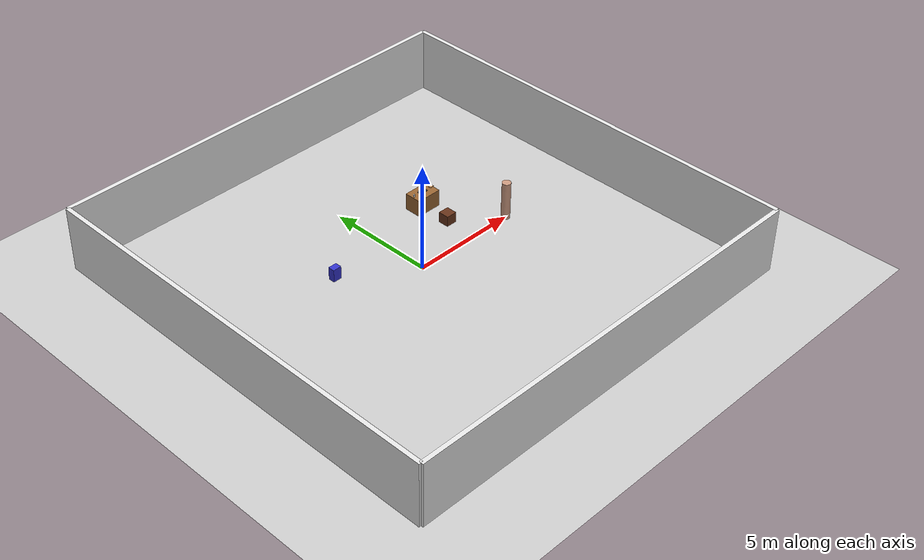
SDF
<?xml version="1.0" ?>
<sdf version="1.6">
  <world name="detection_world">
    <!-- 물리 엔진 설정 -->
    <physics type="ode">
      <max_step_size>0.001</max_step_size>
      <real_time_factor>1</real_time_factor>
      <real_time_update_rate>1000</real_time_update_rate>
      <gravity>0 0 -9.81</gravity>
    </physics>

    <!-- 조명 -->
    <light type="directional" name="sun">
      <cast_shadows>true</cast_shadows>
      <pose>0 0 10 0 0 0</pose>
      <diffuse>0.8 0.8 0.8 1</diffuse>
      <specular>0.2 0.2 0.2 1</specular>
      <attenuation>
        <range>1000</range>
        <constant>0.9</constant>
        <linear>0.01</linear>
        <quadratic>0.001</quadratic>
      </attenuation>
      <direction>-0.5 0.1 -0.9</direction>
    </light>

    <!-- 지면 -->
    <model name="ground_plane">
      <static>true</static>
      <link name="link">
        <collision name="collision">
          <geometry>
            <plane>
              <normal>0 0 1</normal>
              <size>50 50</size>
            </plane>
          </geometry>
        </collision>
        <visual name="visual">
          <geometry>
            <plane>
              <normal>0 0 1</normal>
              <size>50 50</size>
            </plane>
          </geometry>
          <material>
            <ambient>0.8 0.8 0.8 1</ambient>
            <diffuse>0.8 0.8 0.8 1</diffuse>
            <specular>0.2 0.2 0.2 1</specular>
          </material>
        </visual>
      </link>
    </model>

    <!-- 벽들 (실내 환경) -->
    <model name="wall_north">
      <static>true</static>
      <pose>0 10 1.5 0 0 0</pose>
      <link name="link">
        <collision name="collision">
          <geometry>
            <box>
              <size>20 0.2 3</size>
            </box>
          </geometry>
        </collision>
        <visual name="visual">
          <geometry>
            <box>
              <size>20 0.2 3</size>
            </box>
          </geometry>
          <material>
            <ambient>0.9 0.9 0.9 1</ambient>
            <diffuse>0.9 0.9 0.9 1</diffuse>
          </material>
        </visual>
      </link>
    </model>

    <model name="wall_south">
      <static>true</static>
      <pose>0 -10 1.5 0 0 0</pose>
      <link name="link">
        <collision name="collision">
          <geometry>
            <box>
              <size>20 0.2 3</size>
            </box>
          </geometry>
        </collision>
        <visual name="visual">
          <geometry>
            <box>
              <size>20 0.2 3</size>
            </box>
          </geometry>
          <material>
            <ambient>0.9 0.9 0.9 1</ambient>
            <diffuse>0.9 0.9 0.9 1</diffuse>
          </material>
        </visual>
      </link>
    </model>

    <model name="wall_east">
      <static>true</static>
      <pose>10 0 1.5 0 0 0</pose>
      <link name="link">
        <collision name="collision">
          <geometry>
            <box>
              <size>0.2 20 3</size>
            </box>
          </geometry>
        </collision>
        <visual name="visual">
          <geometry>
            <box>
              <size>0.2 20 3</size>
            </box>
          </geometry>
          <material>
            <ambient>0.9 0.9 0.9 1</ambient>
            <diffuse>0.9 0.9 0.9 1</diffuse>
          </material>
        </visual>
      </link>
    </model>

    <model name="wall_west">
      <static>true</static>
      <pose>-10 0 1.5 0 0 0</pose>
      <link name="link">
        <collision name="collision">
          <geometry>
            <box>
              <size>0.2 20 3</size>
            </box>
          </geometry>
        </collision>
        <visual name="visual">
          <geometry>
            <box>
              <size>0.2 20 3</size>
            </box>
          </geometry>
          <material>
            <ambient>0.9 0.9 0.9 1</ambient>
            <diffuse>0.9 0.9 0.9 1</diffuse>
          </material>
        </visual>
      </link>
    </model>

    <!-- 테이블 -->
    <model name="table1">
      <static>true</static>
      <pose>3 3 0.4 0 0 0</pose>
      <link name="link">
        <collision name="collision">
          <geometry>
            <box>
              <size>1.2 0.8 0.8</size>
            </box>
          </geometry>
        </collision>
        <visual name="visual">
          <geometry>
            <box>
              <size>1.2 0.8 0.8</size>
            </box>
          </geometry>
          <material>
            <ambient>0.6 0.4 0.2 1</ambient>
            <diffuse>0.6 0.4 0.2 1</diffuse>
          </material>
        </visual>
      </link>
    </model>

    <!-- 의자 -->
    <model name="chair1">
      <static>true</static>
      <pose>3 1.5 0.25 0 0 0</pose>
      <link name="link">
        <collision name="collision">
          <geometry>
            <box>
              <size>0.5 0.5 0.5</size>
            </box>
          </geometry>
        </collision>
        <visual name="visual">
          <geometry>
            <box>
              <size>0.5 0.5 0.5</size>
            </box>
          </geometry>
          <material>
            <ambient>0.4 0.2 0.1 1</ambient>
            <diffuse>0.4 0.2 0.1 1</diffuse>
          </material>
        </visual>
      </link>
    </model>

    <!-- 노트북 -->
    <model name="laptop1">
      <static>true</static>
      <pose>3 3 0.85 0 0 0</pose>
      <link name="link">
        <collision name="collision">
          <geometry>
            <box>
              <size>0.35 0.25 0.02</size>
            </box>
          </geometry>
        </collision>
        <visual name="visual">
          <geometry>
            <box>
              <size>0.35 0.25 0.02</size>
            </box>
          </geometry>
          <material>
            <ambient>0.2 0.2 0.2 1</ambient>
            <diffuse>0.2 0.2 0.2 1</diffuse>
          </material>
        </visual>
      </link>
    </model>

    <model name="cup1">
      <static>true</static>
      <pose>2.5 3 0.85 0 0 0</pose>
      <link name="link">
        <collision name="collision">
          <geometry>
            <cylinder>
              <radius>0.04</radius>
              <length>0.12</length>
            </cylinder>
          </geometry>
        </collision>
        <visual name="visual">
          <geometry>
            <cylinder>
              <radius>0.04</radius>
              <length>0.12</length>
            </cylinder>
          </geometry>
          <material>
            <ambient>0.8 0.8 0.8 1</ambient>
            <diffuse>0.8 0.8 0.8 1</diffuse>
          </material>
        </visual>
      </link>
    </model>

    <model name="book1">
      <static>true</static>
      <pose>3.5 3 0.85 0 0 0</pose>
      <link name="link">
        <collision name="collision">
          <geometry>
            <box>
              <size>0.2 0.15 0.03</size>
            </box>
          </geometry>
        </collision>
        <visual name="visual">
          <geometry>
            <box>
              <size>0.2 0.15 0.03</size>
            </box>
          </geometry>
          <material>
            <ambient>0.8 0.6 0.4 1</ambient>
            <diffuse>0.8 0.6 0.4 1</diffuse>
          </material>
        </visual>
      </link>
    </model>

    <!-- 사람 (간단한 형태) -->
    <model name="person1">
      <static>true</static>
      <pose>5 0 0.9 0 0 0</pose>
      <link name="link">
        <collision name="collision">
          <geometry>
            <cylinder>
              <radius>0.2</radius>
              <length>1.8</length>
            </cylinder>
          </geometry>
        </collision>
        <visual name="visual">
          <geometry>
            <cylinder>
              <radius>0.2</radius>
              <length>1.8</length>
            </cylinder>
          </geometry>
          <material>
            <ambient>0.8 0.6 0.5 1</ambient>
            <diffuse>0.8 0.6 0.5 1</diffuse>
          </material>
        </visual>
      </link>
    </model>

    <!-- 가방 -->
    <model name="bag1">
      <static>true</static>
      <pose>-3 2 0.3 0 0 0</pose>
      <link name="link">
        <collision name="collision">
          <geometry>
            <box>
              <size>0.4 0.3 0.6</size>
            </box>
          </geometry>
        </collision>
        <visual name="visual">
          <geometry>
            <box>
              <size>0.4 0.3 0.6</size>
            </box>
          </geometry>
          <material>
            <ambient>0.2 0.2 0.8 1</ambient>
            <diffuse>0.2 0.2 0.8 1</diffuse>
          </material>
        </visual>
      </link>
    </model>

    <!-- 전화기 -->
    <model name="phone1">
      <static>true</static>
      <pose>2.8 3 0.85 0 0 0</pose>
      <link name="link">
        <collision name="collision">
          <geometry>
            <box>
              <size>0.08 0.15 0.01</size>
            </box>
          </geometry>
        </collision>
        <visual name="visual">
          <geometry>
            <box>
              <size>0.08 0.15 0.01</size>
            </box>
          </geometry>
          <material>
            <ambient>0.1 0.1 0.1 1</ambient>
            <diffuse>0.1 0.1 0.1 1</diffuse>
          </material>
        </visual>
      </link>
    </model>
  </world>
</sdf>
